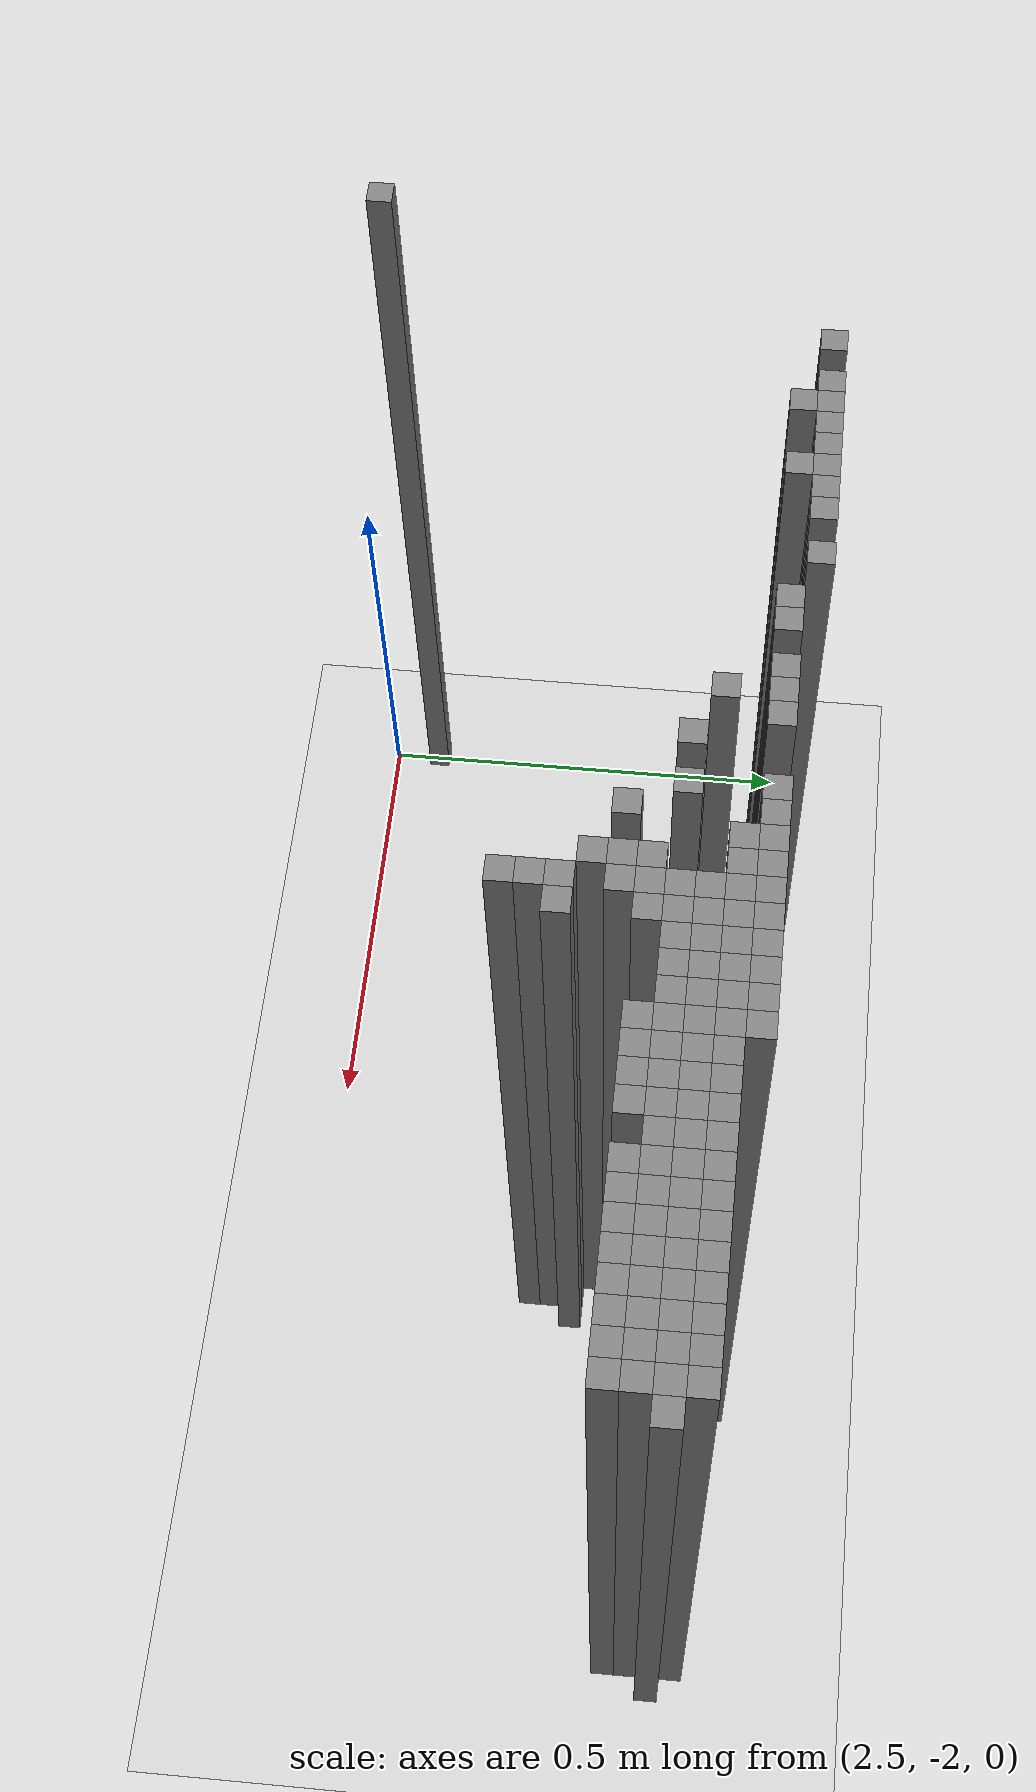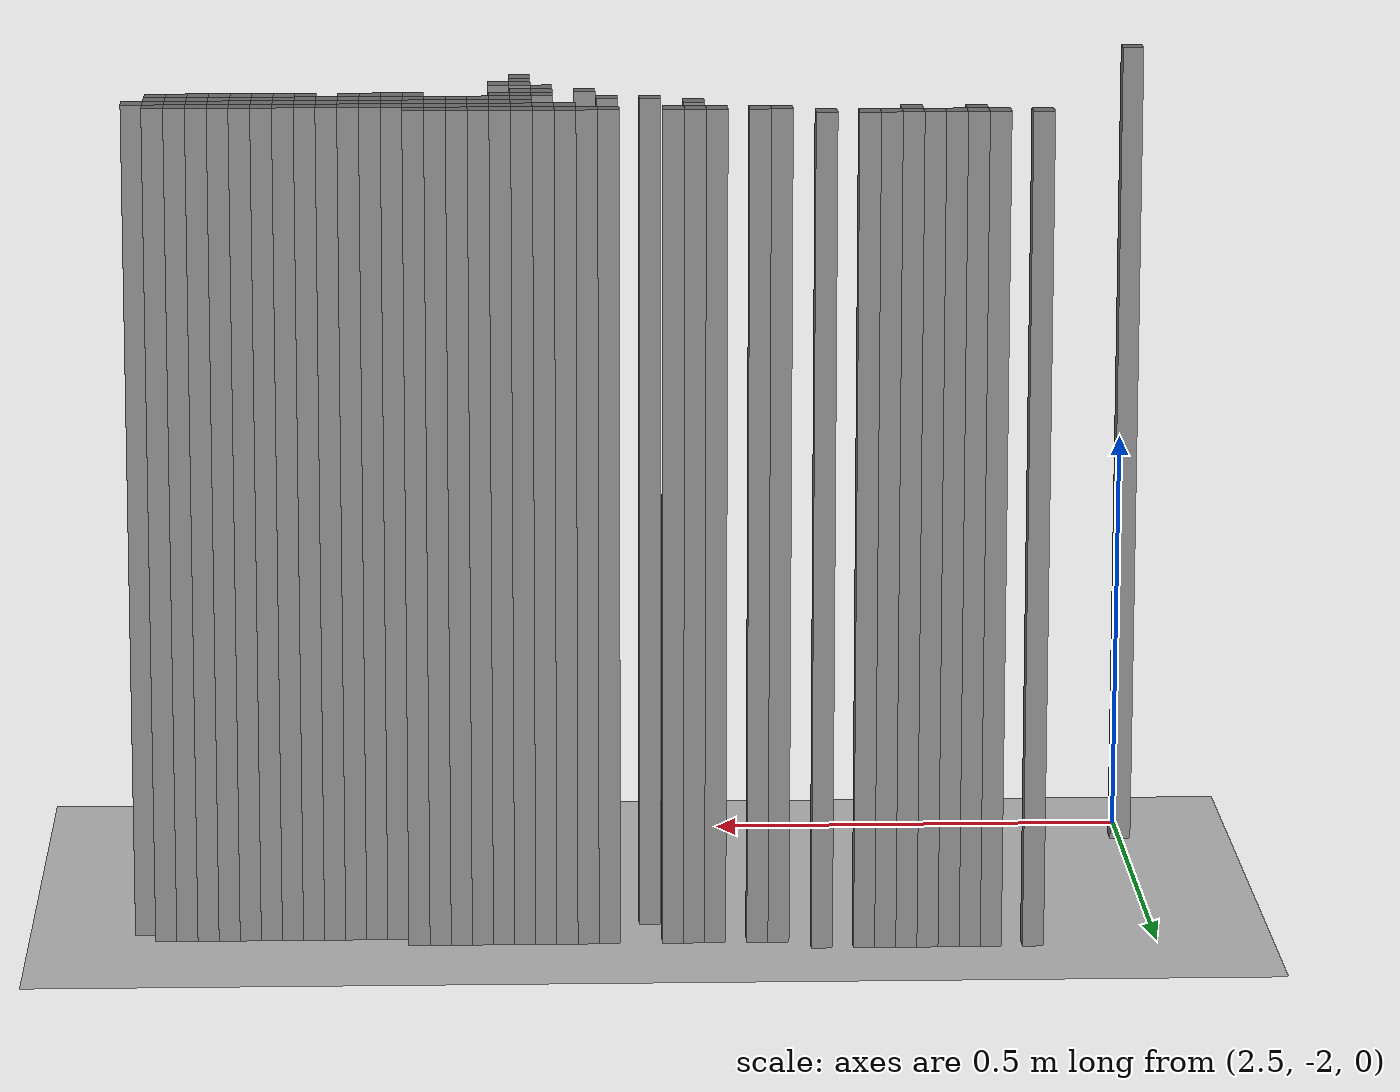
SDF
<sdf version="1.6">
 <world name="map_world">
  <include><uri>model://ground_plane</uri></include>
  <include><uri>model://sun</uri></include>
  <model name="obs_199_109">
   <static>true</static>
   <link name="link">
    <collision name="collision"><geometry><box><size>0.025 0.025 1.0</size></box></geometry></collision>
    <visual name="visual">
     <geometry><box><size>0.025 0.025 1.0</size></box></geometry>
     <material><ambient>0.5 0.5 0.5 1</ambient></material>
    </visual>
   </link>
   <pose>2.6487650000000005 -1.494071 0.5 0 0 0</pose>
  </model>
  <model name="obs_201_109">
   <static>true</static>
   <link name="link">
    <collision name="collision"><geometry><box><size>0.025 0.025 1.0</size></box></geometry></collision>
    <visual name="visual">
     <geometry><box><size>0.025 0.025 1.0</size></box></geometry>
     <material><ambient>0.5 0.5 0.5 1</ambient></material>
    </visual>
   </link>
   <pose>2.6987650000000003 -1.494071 0.5 0 0 0</pose>
  </model>
  <model name="obs_202_109">
   <static>true</static>
   <link name="link">
    <collision name="collision"><geometry><box><size>0.025 0.025 1.0</size></box></geometry></collision>
    <visual name="visual">
     <geometry><box><size>0.025 0.025 1.0</size></box></geometry>
     <material><ambient>0.5 0.5 0.5 1</ambient></material>
    </visual>
   </link>
   <pose>2.7237650000000007 -1.494071 0.5 0 0 0</pose>
  </model>
  <model name="obs_203_109">
   <static>true</static>
   <link name="link">
    <collision name="collision"><geometry><box><size>0.025 0.025 1.0</size></box></geometry></collision>
    <visual name="visual">
     <geometry><box><size>0.025 0.025 1.0</size></box></geometry>
     <material><ambient>0.5 0.5 0.5 1</ambient></material>
    </visual>
   </link>
   <pose>2.748765 -1.494071 0.5 0 0 0</pose>
  </model>
  <model name="obs_204_109">
   <static>true</static>
   <link name="link">
    <collision name="collision"><geometry><box><size>0.025 0.025 1.0</size></box></geometry></collision>
    <visual name="visual">
     <geometry><box><size>0.025 0.025 1.0</size></box></geometry>
     <material><ambient>0.5 0.5 0.5 1</ambient></material>
    </visual>
   </link>
   <pose>2.7737650000000005 -1.494071 0.5 0 0 0</pose>
  </model>
  <model name="obs_205_109">
   <static>true</static>
   <link name="link">
    <collision name="collision"><geometry><box><size>0.025 0.025 1.0</size></box></geometry></collision>
    <visual name="visual">
     <geometry><box><size>0.025 0.025 1.0</size></box></geometry>
     <material><ambient>0.5 0.5 0.5 1</ambient></material>
    </visual>
   </link>
   <pose>2.798765 -1.494071 0.5 0 0 0</pose>
  </model>
  <model name="obs_206_109">
   <static>true</static>
   <link name="link">
    <collision name="collision"><geometry><box><size>0.025 0.025 1.0</size></box></geometry></collision>
    <visual name="visual">
     <geometry><box><size>0.025 0.025 1.0</size></box></geometry>
     <material><ambient>0.5 0.5 0.5 1</ambient></material>
    </visual>
   </link>
   <pose>2.8237650000000003 -1.494071 0.5 0 0 0</pose>
  </model>
  <model name="obs_207_109">
   <static>true</static>
   <link name="link">
    <collision name="collision"><geometry><box><size>0.025 0.025 1.0</size></box></geometry></collision>
    <visual name="visual">
     <geometry><box><size>0.025 0.025 1.0</size></box></geometry>
     <material><ambient>0.5 0.5 0.5 1</ambient></material>
    </visual>
   </link>
   <pose>2.8487650000000007 -1.494071 0.5 0 0 0</pose>
  </model>
  <model name="obs_209_109">
   <static>true</static>
   <link name="link">
    <collision name="collision"><geometry><box><size>0.025 0.025 1.0</size></box></geometry></collision>
    <visual name="visual">
     <geometry><box><size>0.025 0.025 1.0</size></box></geometry>
     <material><ambient>0.5 0.5 0.5 1</ambient></material>
    </visual>
   </link>
   <pose>2.8987650000000005 -1.494071 0.5 0 0 0</pose>
  </model>
  <model name="obs_202_110">
   <static>true</static>
   <link name="link">
    <collision name="collision"><geometry><box><size>0.025 0.025 1.0</size></box></geometry></collision>
    <visual name="visual">
     <geometry><box><size>0.025 0.025 1.0</size></box></geometry>
     <material><ambient>0.5 0.5 0.5 1</ambient></material>
    </visual>
   </link>
   <pose>2.7237650000000007 -1.5190709999999998 0.5 0 0 0</pose>
  </model>
  <model name="obs_205_110">
   <static>true</static>
   <link name="link">
    <collision name="collision"><geometry><box><size>0.025 0.025 1.0</size></box></geometry></collision>
    <visual name="visual">
     <geometry><box><size>0.025 0.025 1.0</size></box></geometry>
     <material><ambient>0.5 0.5 0.5 1</ambient></material>
    </visual>
   </link>
   <pose>2.798765 -1.5190709999999998 0.5 0 0 0</pose>
  </model>
  <model name="obs_211_110">
   <static>true</static>
   <link name="link">
    <collision name="collision"><geometry><box><size>0.025 0.025 1.0</size></box></geometry></collision>
    <visual name="visual">
     <geometry><box><size>0.025 0.025 1.0</size></box></geometry>
     <material><ambient>0.5 0.5 0.5 1</ambient></material>
    </visual>
   </link>
   <pose>2.9487650000000003 -1.5190709999999998 0.5 0 0 0</pose>
  </model>
  <model name="obs_212_110">
   <static>true</static>
   <link name="link">
    <collision name="collision"><geometry><box><size>0.025 0.025 1.0</size></box></geometry></collision>
    <visual name="visual">
     <geometry><box><size>0.025 0.025 1.0</size></box></geometry>
     <material><ambient>0.5 0.5 0.5 1</ambient></material>
    </visual>
   </link>
   <pose>2.9737650000000007 -1.5190709999999998 0.5 0 0 0</pose>
  </model>
  <model name="obs_214_110">
   <static>true</static>
   <link name="link">
    <collision name="collision"><geometry><box><size>0.025 0.025 1.0</size></box></geometry></collision>
    <visual name="visual">
     <geometry><box><size>0.025 0.025 1.0</size></box></geometry>
     <material><ambient>0.5 0.5 0.5 1</ambient></material>
    </visual>
   </link>
   <pose>3.0237650000000005 -1.5190709999999998 0.5 0 0 0</pose>
  </model>
  <model name="obs_215_110">
   <static>true</static>
   <link name="link">
    <collision name="collision"><geometry><box><size>0.025 0.025 1.0</size></box></geometry></collision>
    <visual name="visual">
     <geometry><box><size>0.025 0.025 1.0</size></box></geometry>
     <material><ambient>0.5 0.5 0.5 1</ambient></material>
    </visual>
   </link>
   <pose>3.048765 -1.5190709999999998 0.5 0 0 0</pose>
  </model>
  <model name="obs_216_110">
   <static>true</static>
   <link name="link">
    <collision name="collision"><geometry><box><size>0.025 0.025 1.0</size></box></geometry></collision>
    <visual name="visual">
     <geometry><box><size>0.025 0.025 1.0</size></box></geometry>
     <material><ambient>0.5 0.5 0.5 1</ambient></material>
    </visual>
   </link>
   <pose>3.0737650000000003 -1.5190709999999998 0.5 0 0 0</pose>
  </model>
  <model name="obs_219_110">
   <static>true</static>
   <link name="link">
    <collision name="collision"><geometry><box><size>0.025 0.025 1.0</size></box></geometry></collision>
    <visual name="visual">
     <geometry><box><size>0.025 0.025 1.0</size></box></geometry>
     <material><ambient>0.5 0.5 0.5 1</ambient></material>
    </visual>
   </link>
   <pose>3.1487650000000005 -1.5190709999999998 0.5 0 0 0</pose>
  </model>
  <model name="obs_220_110">
   <static>true</static>
   <link name="link">
    <collision name="collision"><geometry><box><size>0.025 0.025 1.0</size></box></geometry></collision>
    <visual name="visual">
     <geometry><box><size>0.025 0.025 1.0</size></box></geometry>
     <material><ambient>0.5 0.5 0.5 1</ambient></material>
    </visual>
   </link>
   <pose>3.173765 -1.5190709999999998 0.5 0 0 0</pose>
  </model>
  <model name="obs_221_110">
   <static>true</static>
   <link name="link">
    <collision name="collision"><geometry><box><size>0.025 0.025 1.0</size></box></geometry></collision>
    <visual name="visual">
     <geometry><box><size>0.025 0.025 1.0</size></box></geometry>
     <material><ambient>0.5 0.5 0.5 1</ambient></material>
    </visual>
   </link>
   <pose>3.1987650000000003 -1.5190709999999998 0.5 0 0 0</pose>
  </model>
  <model name="obs_222_110">
   <static>true</static>
   <link name="link">
    <collision name="collision"><geometry><box><size>0.025 0.025 1.0</size></box></geometry></collision>
    <visual name="visual">
     <geometry><box><size>0.025 0.025 1.0</size></box></geometry>
     <material><ambient>0.5 0.5 0.5 1</ambient></material>
    </visual>
   </link>
   <pose>3.2237650000000007 -1.5190709999999998 0.5 0 0 0</pose>
  </model>
  <model name="obs_223_110">
   <static>true</static>
   <link name="link">
    <collision name="collision"><geometry><box><size>0.025 0.025 1.0</size></box></geometry></collision>
    <visual name="visual">
     <geometry><box><size>0.025 0.025 1.0</size></box></geometry>
     <material><ambient>0.5 0.5 0.5 1</ambient></material>
    </visual>
   </link>
   <pose>3.248765 -1.5190709999999998 0.5 0 0 0</pose>
  </model>
  <model name="obs_224_110">
   <static>true</static>
   <link name="link">
    <collision name="collision"><geometry><box><size>0.025 0.025 1.0</size></box></geometry></collision>
    <visual name="visual">
     <geometry><box><size>0.025 0.025 1.0</size></box></geometry>
     <material><ambient>0.5 0.5 0.5 1</ambient></material>
    </visual>
   </link>
   <pose>3.2737650000000005 -1.5190709999999998 0.5 0 0 0</pose>
  </model>
  <model name="obs_225_110">
   <static>true</static>
   <link name="link">
    <collision name="collision"><geometry><box><size>0.025 0.025 1.0</size></box></geometry></collision>
    <visual name="visual">
     <geometry><box><size>0.025 0.025 1.0</size></box></geometry>
     <material><ambient>0.5 0.5 0.5 1</ambient></material>
    </visual>
   </link>
   <pose>3.298765 -1.5190709999999998 0.5 0 0 0</pose>
  </model>
  <model name="obs_226_110">
   <static>true</static>
   <link name="link">
    <collision name="collision"><geometry><box><size>0.025 0.025 1.0</size></box></geometry></collision>
    <visual name="visual">
     <geometry><box><size>0.025 0.025 1.0</size></box></geometry>
     <material><ambient>0.5 0.5 0.5 1</ambient></material>
    </visual>
   </link>
   <pose>3.3237650000000003 -1.5190709999999998 0.5 0 0 0</pose>
  </model>
  <model name="obs_227_110">
   <static>true</static>
   <link name="link">
    <collision name="collision"><geometry><box><size>0.025 0.025 1.0</size></box></geometry></collision>
    <visual name="visual">
     <geometry><box><size>0.025 0.025 1.0</size></box></geometry>
     <material><ambient>0.5 0.5 0.5 1</ambient></material>
    </visual>
   </link>
   <pose>3.3487650000000007 -1.5190709999999998 0.5 0 0 0</pose>
  </model>
  <model name="obs_228_110">
   <static>true</static>
   <link name="link">
    <collision name="collision"><geometry><box><size>0.025 0.025 1.0</size></box></geometry></collision>
    <visual name="visual">
     <geometry><box><size>0.025 0.025 1.0</size></box></geometry>
     <material><ambient>0.5 0.5 0.5 1</ambient></material>
    </visual>
   </link>
   <pose>3.373765 -1.5190709999999998 0.5 0 0 0</pose>
  </model>
  <model name="obs_221_111">
   <static>true</static>
   <link name="link">
    <collision name="collision"><geometry><box><size>0.025 0.025 1.0</size></box></geometry></collision>
    <visual name="visual">
     <geometry><box><size>0.025 0.025 1.0</size></box></geometry>
     <material><ambient>0.5 0.5 0.5 1</ambient></material>
    </visual>
   </link>
   <pose>3.1987650000000003 -1.544071 0.5 0 0 0</pose>
  </model>
  <model name="obs_222_111">
   <static>true</static>
   <link name="link">
    <collision name="collision"><geometry><box><size>0.025 0.025 1.0</size></box></geometry></collision>
    <visual name="visual">
     <geometry><box><size>0.025 0.025 1.0</size></box></geometry>
     <material><ambient>0.5 0.5 0.5 1</ambient></material>
    </visual>
   </link>
   <pose>3.2237650000000007 -1.544071 0.5 0 0 0</pose>
  </model>
  <model name="obs_223_111">
   <static>true</static>
   <link name="link">
    <collision name="collision"><geometry><box><size>0.025 0.025 1.0</size></box></geometry></collision>
    <visual name="visual">
     <geometry><box><size>0.025 0.025 1.0</size></box></geometry>
     <material><ambient>0.5 0.5 0.5 1</ambient></material>
    </visual>
   </link>
   <pose>3.248765 -1.544071 0.5 0 0 0</pose>
  </model>
  <model name="obs_224_111">
   <static>true</static>
   <link name="link">
    <collision name="collision"><geometry><box><size>0.025 0.025 1.0</size></box></geometry></collision>
    <visual name="visual">
     <geometry><box><size>0.025 0.025 1.0</size></box></geometry>
     <material><ambient>0.5 0.5 0.5 1</ambient></material>
    </visual>
   </link>
   <pose>3.2737650000000005 -1.544071 0.5 0 0 0</pose>
  </model>
  <model name="obs_225_111">
   <static>true</static>
   <link name="link">
    <collision name="collision"><geometry><box><size>0.025 0.025 1.0</size></box></geometry></collision>
    <visual name="visual">
     <geometry><box><size>0.025 0.025 1.0</size></box></geometry>
     <material><ambient>0.5 0.5 0.5 1</ambient></material>
    </visual>
   </link>
   <pose>3.298765 -1.544071 0.5 0 0 0</pose>
  </model>
  <model name="obs_226_111">
   <static>true</static>
   <link name="link">
    <collision name="collision"><geometry><box><size>0.025 0.025 1.0</size></box></geometry></collision>
    <visual name="visual">
     <geometry><box><size>0.025 0.025 1.0</size></box></geometry>
     <material><ambient>0.5 0.5 0.5 1</ambient></material>
    </visual>
   </link>
   <pose>3.3237650000000003 -1.544071 0.5 0 0 0</pose>
  </model>
  <model name="obs_227_111">
   <static>true</static>
   <link name="link">
    <collision name="collision"><geometry><box><size>0.025 0.025 1.0</size></box></geometry></collision>
    <visual name="visual">
     <geometry><box><size>0.025 0.025 1.0</size></box></geometry>
     <material><ambient>0.5 0.5 0.5 1</ambient></material>
    </visual>
   </link>
   <pose>3.3487650000000007 -1.544071 0.5 0 0 0</pose>
  </model>
  <model name="obs_228_111">
   <static>true</static>
   <link name="link">
    <collision name="collision"><geometry><box><size>0.025 0.025 1.0</size></box></geometry></collision>
    <visual name="visual">
     <geometry><box><size>0.025 0.025 1.0</size></box></geometry>
     <material><ambient>0.5 0.5 0.5 1</ambient></material>
    </visual>
   </link>
   <pose>3.373765 -1.544071 0.5 0 0 0</pose>
  </model>
  <model name="obs_229_111">
   <static>true</static>
   <link name="link">
    <collision name="collision"><geometry><box><size>0.025 0.025 1.0</size></box></geometry></collision>
    <visual name="visual">
     <geometry><box><size>0.025 0.025 1.0</size></box></geometry>
     <material><ambient>0.5 0.5 0.5 1</ambient></material>
    </visual>
   </link>
   <pose>3.3987650000000005 -1.544071 0.5 0 0 0</pose>
  </model>
  <model name="obs_230_111">
   <static>true</static>
   <link name="link">
    <collision name="collision"><geometry><box><size>0.025 0.025 1.0</size></box></geometry></collision>
    <visual name="visual">
     <geometry><box><size>0.025 0.025 1.0</size></box></geometry>
     <material><ambient>0.5 0.5 0.5 1</ambient></material>
    </visual>
   </link>
   <pose>3.423765 -1.544071 0.5 0 0 0</pose>
  </model>
  <model name="obs_231_111">
   <static>true</static>
   <link name="link">
    <collision name="collision"><geometry><box><size>0.025 0.025 1.0</size></box></geometry></collision>
    <visual name="visual">
     <geometry><box><size>0.025 0.025 1.0</size></box></geometry>
     <material><ambient>0.5 0.5 0.5 1</ambient></material>
    </visual>
   </link>
   <pose>3.4487650000000003 -1.544071 0.5 0 0 0</pose>
  </model>
  <model name="obs_232_111">
   <static>true</static>
   <link name="link">
    <collision name="collision"><geometry><box><size>0.025 0.025 1.0</size></box></geometry></collision>
    <visual name="visual">
     <geometry><box><size>0.025 0.025 1.0</size></box></geometry>
     <material><ambient>0.5 0.5 0.5 1</ambient></material>
    </visual>
   </link>
   <pose>3.4737650000000007 -1.544071 0.5 0 0 0</pose>
  </model>
  <model name="obs_233_111">
   <static>true</static>
   <link name="link">
    <collision name="collision"><geometry><box><size>0.025 0.025 1.0</size></box></geometry></collision>
    <visual name="visual">
     <geometry><box><size>0.025 0.025 1.0</size></box></geometry>
     <material><ambient>0.5 0.5 0.5 1</ambient></material>
    </visual>
   </link>
   <pose>3.498765 -1.544071 0.5 0 0 0</pose>
  </model>
  <model name="obs_234_111">
   <static>true</static>
   <link name="link">
    <collision name="collision"><geometry><box><size>0.025 0.025 1.0</size></box></geometry></collision>
    <visual name="visual">
     <geometry><box><size>0.025 0.025 1.0</size></box></geometry>
     <material><ambient>0.5 0.5 0.5 1</ambient></material>
    </visual>
   </link>
   <pose>3.5237650000000005 -1.544071 0.5 0 0 0</pose>
  </model>
  <model name="obs_235_111">
   <static>true</static>
   <link name="link">
    <collision name="collision"><geometry><box><size>0.025 0.025 1.0</size></box></geometry></collision>
    <visual name="visual">
     <geometry><box><size>0.025 0.025 1.0</size></box></geometry>
     <material><ambient>0.5 0.5 0.5 1</ambient></material>
    </visual>
   </link>
   <pose>3.548765 -1.544071 0.5 0 0 0</pose>
  </model>
  <model name="obs_236_111">
   <static>true</static>
   <link name="link">
    <collision name="collision"><geometry><box><size>0.025 0.025 1.0</size></box></geometry></collision>
    <visual name="visual">
     <geometry><box><size>0.025 0.025 1.0</size></box></geometry>
     <material><ambient>0.5 0.5 0.5 1</ambient></material>
    </visual>
   </link>
   <pose>3.5737650000000003 -1.544071 0.5 0 0 0</pose>
  </model>
  <model name="obs_237_111">
   <static>true</static>
   <link name="link">
    <collision name="collision"><geometry><box><size>0.025 0.025 1.0</size></box></geometry></collision>
    <visual name="visual">
     <geometry><box><size>0.025 0.025 1.0</size></box></geometry>
     <material><ambient>0.5 0.5 0.5 1</ambient></material>
    </visual>
   </link>
   <pose>3.5987650000000007 -1.544071 0.5 0 0 0</pose>
  </model>
  <model name="obs_238_111">
   <static>true</static>
   <link name="link">
    <collision name="collision"><geometry><box><size>0.025 0.025 1.0</size></box></geometry></collision>
    <visual name="visual">
     <geometry><box><size>0.025 0.025 1.0</size></box></geometry>
     <material><ambient>0.5 0.5 0.5 1</ambient></material>
    </visual>
   </link>
   <pose>3.623765 -1.544071 0.5 0 0 0</pose>
  </model>
  <model name="obs_239_111">
   <static>true</static>
   <link name="link">
    <collision name="collision"><geometry><box><size>0.025 0.025 1.0</size></box></geometry></collision>
    <visual name="visual">
     <geometry><box><size>0.025 0.025 1.0</size></box></geometry>
     <material><ambient>0.5 0.5 0.5 1</ambient></material>
    </visual>
   </link>
   <pose>3.6487650000000005 -1.544071 0.5 0 0 0</pose>
  </model>
  <model name="obs_240_111">
   <static>true</static>
   <link name="link">
    <collision name="collision"><geometry><box><size>0.025 0.025 1.0</size></box></geometry></collision>
    <visual name="visual">
     <geometry><box><size>0.025 0.025 1.0</size></box></geometry>
     <material><ambient>0.5 0.5 0.5 1</ambient></material>
    </visual>
   </link>
   <pose>3.673765 -1.544071 0.5 0 0 0</pose>
  </model>
  <model name="obs_215_112">
   <static>true</static>
   <link name="link">
    <collision name="collision"><geometry><box><size>0.025 0.025 1.0</size></box></geometry></collision>
    <visual name="visual">
     <geometry><box><size>0.025 0.025 1.0</size></box></geometry>
     <material><ambient>0.5 0.5 0.5 1</ambient></material>
    </visual>
   </link>
   <pose>3.048765 -1.5690709999999999 0.5 0 0 0</pose>
  </model>
  <model name="obs_223_112">
   <static>true</static>
   <link name="link">
    <collision name="collision"><geometry><box><size>0.025 0.025 1.0</size></box></geometry></collision>
    <visual name="visual">
     <geometry><box><size>0.025 0.025 1.0</size></box></geometry>
     <material><ambient>0.5 0.5 0.5 1</ambient></material>
    </visual>
   </link>
   <pose>3.248765 -1.5690709999999999 0.5 0 0 0</pose>
  </model>
  <model name="obs_224_112">
   <static>true</static>
   <link name="link">
    <collision name="collision"><geometry><box><size>0.025 0.025 1.0</size></box></geometry></collision>
    <visual name="visual">
     <geometry><box><size>0.025 0.025 1.0</size></box></geometry>
     <material><ambient>0.5 0.5 0.5 1</ambient></material>
    </visual>
   </link>
   <pose>3.2737650000000005 -1.5690709999999999 0.5 0 0 0</pose>
  </model>
  <model name="obs_225_112">
   <static>true</static>
   <link name="link">
    <collision name="collision"><geometry><box><size>0.025 0.025 1.0</size></box></geometry></collision>
    <visual name="visual">
     <geometry><box><size>0.025 0.025 1.0</size></box></geometry>
     <material><ambient>0.5 0.5 0.5 1</ambient></material>
    </visual>
   </link>
   <pose>3.298765 -1.5690709999999999 0.5 0 0 0</pose>
  </model>
  <model name="obs_226_112">
   <static>true</static>
   <link name="link">
    <collision name="collision"><geometry><box><size>0.025 0.025 1.0</size></box></geometry></collision>
    <visual name="visual">
     <geometry><box><size>0.025 0.025 1.0</size></box></geometry>
     <material><ambient>0.5 0.5 0.5 1</ambient></material>
    </visual>
   </link>
   <pose>3.3237650000000003 -1.5690709999999999 0.5 0 0 0</pose>
  </model>
  <model name="obs_227_112">
   <static>true</static>
   <link name="link">
    <collision name="collision"><geometry><box><size>0.025 0.025 1.0</size></box></geometry></collision>
    <visual name="visual">
     <geometry><box><size>0.025 0.025 1.0</size></box></geometry>
     <material><ambient>0.5 0.5 0.5 1</ambient></material>
    </visual>
   </link>
   <pose>3.3487650000000007 -1.5690709999999999 0.5 0 0 0</pose>
  </model>
  <model name="obs_228_112">
   <static>true</static>
   <link name="link">
    <collision name="collision"><geometry><box><size>0.025 0.025 1.0</size></box></geometry></collision>
    <visual name="visual">
     <geometry><box><size>0.025 0.025 1.0</size></box></geometry>
     <material><ambient>0.5 0.5 0.5 1</ambient></material>
    </visual>
   </link>
   <pose>3.373765 -1.5690709999999999 0.5 0 0 0</pose>
  </model>
  <model name="obs_229_112">
   <static>true</static>
   <link name="link">
    <collision name="collision"><geometry><box><size>0.025 0.025 1.0</size></box></geometry></collision>
    <visual name="visual">
     <geometry><box><size>0.025 0.025 1.0</size></box></geometry>
     <material><ambient>0.5 0.5 0.5 1</ambient></material>
    </visual>
   </link>
   <pose>3.3987650000000005 -1.5690709999999999 0.5 0 0 0</pose>
  </model>
  <model name="obs_230_112">
   <static>true</static>
   <link name="link">
    <collision name="collision"><geometry><box><size>0.025 0.025 1.0</size></box></geometry></collision>
    <visual name="visual">
     <geometry><box><size>0.025 0.025 1.0</size></box></geometry>
     <material><ambient>0.5 0.5 0.5 1</ambient></material>
    </visual>
   </link>
   <pose>3.423765 -1.5690709999999999 0.5 0 0 0</pose>
  </model>
  <model name="obs_231_112">
   <static>true</static>
   <link name="link">
    <collision name="collision"><geometry><box><size>0.025 0.025 1.0</size></box></geometry></collision>
    <visual name="visual">
     <geometry><box><size>0.025 0.025 1.0</size></box></geometry>
     <material><ambient>0.5 0.5 0.5 1</ambient></material>
    </visual>
   </link>
   <pose>3.4487650000000003 -1.5690709999999999 0.5 0 0 0</pose>
  </model>
  <model name="obs_232_112">
   <static>true</static>
   <link name="link">
    <collision name="collision"><geometry><box><size>0.025 0.025 1.0</size></box></geometry></collision>
    <visual name="visual">
     <geometry><box><size>0.025 0.025 1.0</size></box></geometry>
     <material><ambient>0.5 0.5 0.5 1</ambient></material>
    </visual>
   </link>
   <pose>3.4737650000000007 -1.5690709999999999 0.5 0 0 0</pose>
  </model>
  <model name="obs_233_112">
   <static>true</static>
   <link name="link">
    <collision name="collision"><geometry><box><size>0.025 0.025 1.0</size></box></geometry></collision>
    <visual name="visual">
     <geometry><box><size>0.025 0.025 1.0</size></box></geometry>
     <material><ambient>0.5 0.5 0.5 1</ambient></material>
    </visual>
   </link>
   <pose>3.498765 -1.5690709999999999 0.5 0 0 0</pose>
  </model>
  <model name="obs_234_112">
   <static>true</static>
   <link name="link">
    <collision name="collision"><geometry><box><size>0.025 0.025 1.0</size></box></geometry></collision>
    <visual name="visual">
     <geometry><box><size>0.025 0.025 1.0</size></box></geometry>
     <material><ambient>0.5 0.5 0.5 1</ambient></material>
    </visual>
   </link>
   <pose>3.5237650000000005 -1.5690709999999999 0.5 0 0 0</pose>
  </model>
  <model name="obs_235_112">
   <static>true</static>
   <link name="link">
    <collision name="collision"><geometry><box><size>0.025 0.025 1.0</size></box></geometry></collision>
    <visual name="visual">
     <geometry><box><size>0.025 0.025 1.0</size></box></geometry>
     <material><ambient>0.5 0.5 0.5 1</ambient></material>
    </visual>
   </link>
   <pose>3.548765 -1.5690709999999999 0.5 0 0 0</pose>
  </model>
  <model name="obs_236_112">
   <static>true</static>
   <link name="link">
    <collision name="collision"><geometry><box><size>0.025 0.025 1.0</size></box></geometry></collision>
    <visual name="visual">
     <geometry><box><size>0.025 0.025 1.0</size></box></geometry>
     <material><ambient>0.5 0.5 0.5 1</ambient></material>
    </visual>
   </link>
   <pose>3.5737650000000003 -1.5690709999999999 0.5 0 0 0</pose>
  </model>
  <model name="obs_237_112">
   <static>true</static>
   <link name="link">
    <collision name="collision"><geometry><box><size>0.025 0.025 1.0</size></box></geometry></collision>
    <visual name="visual">
     <geometry><box><size>0.025 0.025 1.0</size></box></geometry>
     <material><ambient>0.5 0.5 0.5 1</ambient></material>
    </visual>
   </link>
   <pose>3.5987650000000007 -1.5690709999999999 0.5 0 0 0</pose>
  </model>
  <model name="obs_238_112">
   <static>true</static>
   <link name="link">
    <collision name="collision"><geometry><box><size>0.025 0.025 1.0</size></box></geometry></collision>
    <visual name="visual">
     <geometry><box><size>0.025 0.025 1.0</size></box></geometry>
     <material><ambient>0.5 0.5 0.5 1</ambient></material>
    </visual>
   </link>
   <pose>3.623765 -1.5690709999999999 0.5 0 0 0</pose>
  </model>
  <model name="obs_239_112">
   <static>true</static>
   <link name="link">
    <collision name="collision"><geometry><box><size>0.025 0.025 1.0</size></box></geometry></collision>
    <visual name="visual">
     <geometry><box><size>0.025 0.025 1.0</size></box></geometry>
     <material><ambient>0.5 0.5 0.5 1</ambient></material>
    </visual>
   </link>
   <pose>3.6487650000000005 -1.5690709999999999 0.5 0 0 0</pose>
  </model>
  <model name="obs_240_112">
   <static>true</static>
   <link name="link">
    <collision name="collision"><geometry><box><size>0.025 0.025 1.0</size></box></geometry></collision>
    <visual name="visual">
     <geometry><box><size>0.025 0.025 1.0</size></box></geometry>
     <material><ambient>0.5 0.5 0.5 1</ambient></material>
    </visual>
   </link>
   <pose>3.673765 -1.5690709999999999 0.5 0 0 0</pose>
  </model>
  <model name="obs_241_112">
   <static>true</static>
   <link name="link">
    <collision name="collision"><geometry><box><size>0.025 0.025 1.0</size></box></geometry></collision>
    <visual name="visual">
     <geometry><box><size>0.025 0.025 1.0</size></box></geometry>
     <material><ambient>0.5 0.5 0.5 1</ambient></material>
    </visual>
   </link>
   <pose>3.6987650000000003 -1.5690709999999999 0.5 0 0 0</pose>
  </model>
  <model name="obs_217_113">
   <static>true</static>
   <link name="link">
    <collision name="collision"><geometry><box><size>0.025 0.025 1.0</size></box></geometry></collision>
    <visual name="visual">
     <geometry><box><size>0.025 0.025 1.0</size></box></geometry>
     <material><ambient>0.5 0.5 0.5 1</ambient></material>
    </visual>
   </link>
   <pose>3.0987650000000007 -1.594071 0.5 0 0 0</pose>
  </model>
  <model name="obs_219_113">
   <static>true</static>
   <link name="link">
    <collision name="collision"><geometry><box><size>0.025 0.025 1.0</size></box></geometry></collision>
    <visual name="visual">
     <geometry><box><size>0.025 0.025 1.0</size></box></geometry>
     <material><ambient>0.5 0.5 0.5 1</ambient></material>
    </visual>
   </link>
   <pose>3.1487650000000005 -1.594071 0.5 0 0 0</pose>
  </model>
  <model name="obs_223_113">
   <static>true</static>
   <link name="link">
    <collision name="collision"><geometry><box><size>0.025 0.025 1.0</size></box></geometry></collision>
    <visual name="visual">
     <geometry><box><size>0.025 0.025 1.0</size></box></geometry>
     <material><ambient>0.5 0.5 0.5 1</ambient></material>
    </visual>
   </link>
   <pose>3.248765 -1.594071 0.5 0 0 0</pose>
  </model>
  <model name="obs_224_113">
   <static>true</static>
   <link name="link">
    <collision name="collision"><geometry><box><size>0.025 0.025 1.0</size></box></geometry></collision>
    <visual name="visual">
     <geometry><box><size>0.025 0.025 1.0</size></box></geometry>
     <material><ambient>0.5 0.5 0.5 1</ambient></material>
    </visual>
   </link>
   <pose>3.2737650000000005 -1.594071 0.5 0 0 0</pose>
  </model>
  <model name="obs_225_113">
   <static>true</static>
   <link name="link">
    <collision name="collision"><geometry><box><size>0.025 0.025 1.0</size></box></geometry></collision>
    <visual name="visual">
     <geometry><box><size>0.025 0.025 1.0</size></box></geometry>
     <material><ambient>0.5 0.5 0.5 1</ambient></material>
    </visual>
   </link>
   <pose>3.298765 -1.594071 0.5 0 0 0</pose>
  </model>
  <model name="obs_226_113">
   <static>true</static>
   <link name="link">
    <collision name="collision"><geometry><box><size>0.025 0.025 1.0</size></box></geometry></collision>
    <visual name="visual">
     <geometry><box><size>0.025 0.025 1.0</size></box></geometry>
     <material><ambient>0.5 0.5 0.5 1</ambient></material>
    </visual>
   </link>
   <pose>3.3237650000000003 -1.594071 0.5 0 0 0</pose>
  </model>
  <model name="obs_227_113">
   <static>true</static>
   <link name="link">
    <collision name="collision"><geometry><box><size>0.025 0.025 1.0</size></box></geometry></collision>
    <visual name="visual">
     <geometry><box><size>0.025 0.025 1.0</size></box></geometry>
     <material><ambient>0.5 0.5 0.5 1</ambient></material>
    </visual>
   </link>
   <pose>3.3487650000000007 -1.594071 0.5 0 0 0</pose>
  </model>
  <model name="obs_228_113">
   <static>true</static>
   <link name="link">
    <collision name="collision"><geometry><box><size>0.025 0.025 1.0</size></box></geometry></collision>
    <visual name="visual">
     <geometry><box><size>0.025 0.025 1.0</size></box></geometry>
     <material><ambient>0.5 0.5 0.5 1</ambient></material>
    </visual>
   </link>
   <pose>3.373765 -1.594071 0.5 0 0 0</pose>
  </model>
  <model name="obs_229_113">
   <static>true</static>
   <link name="link">
    <collision name="collision"><geometry><box><size>0.025 0.025 1.0</size></box></geometry></collision>
    <visual name="visual">
     <geometry><box><size>0.025 0.025 1.0</size></box></geometry>
     <material><ambient>0.5 0.5 0.5 1</ambient></material>
    </visual>
   </link>
   <pose>3.3987650000000005 -1.594071 0.5 0 0 0</pose>
  </model>
  <model name="obs_230_113">
   <static>true</static>
   <link name="link">
    <collision name="collision"><geometry><box><size>0.025 0.025 1.0</size></box></geometry></collision>
    <visual name="visual">
     <geometry><box><size>0.025 0.025 1.0</size></box></geometry>
     <material><ambient>0.5 0.5 0.5 1</ambient></material>
    </visual>
   </link>
   <pose>3.423765 -1.594071 0.5 0 0 0</pose>
  </model>
  <model name="obs_231_113">
   <static>true</static>
   <link name="link">
    <collision name="collision"><geometry><box><size>0.025 0.025 1.0</size></box></geometry></collision>
    <visual name="visual">
     <geometry><box><size>0.025 0.025 1.0</size></box></geometry>
     <material><ambient>0.5 0.5 0.5 1</ambient></material>
    </visual>
   </link>
   <pose>3.4487650000000003 -1.594071 0.5 0 0 0</pose>
  </model>
  <model name="obs_232_113">
   <static>true</static>
   <link name="link">
    <collision name="collision"><geometry><box><size>0.025 0.025 1.0</size></box></geometry></collision>
    <visual name="visual">
     <geometry><box><size>0.025 0.025 1.0</size></box></geometry>
     <material><ambient>0.5 0.5 0.5 1</ambient></material>
    </visual>
   </link>
   <pose>3.4737650000000007 -1.594071 0.5 0 0 0</pose>
  </model>
  <model name="obs_233_113">
   <static>true</static>
   <link name="link">
    <collision name="collision"><geometry><box><size>0.025 0.025 1.0</size></box></geometry></collision>
    <visual name="visual">
     <geometry><box><size>0.025 0.025 1.0</size></box></geometry>
     <material><ambient>0.5 0.5 0.5 1</ambient></material>
    </visual>
   </link>
   <pose>3.498765 -1.594071 0.5 0 0 0</pose>
  </model>
  <model name="obs_234_113">
   <static>true</static>
   <link name="link">
    <collision name="collision"><geometry><box><size>0.025 0.025 1.0</size></box></geometry></collision>
    <visual name="visual">
     <geometry><box><size>0.025 0.025 1.0</size></box></geometry>
     <material><ambient>0.5 0.5 0.5 1</ambient></material>
    </visual>
   </link>
   <pose>3.5237650000000005 -1.594071 0.5 0 0 0</pose>
  </model>
  <model name="obs_235_113">
   <static>true</static>
   <link name="link">
    <collision name="collision"><geometry><box><size>0.025 0.025 1.0</size></box></geometry></collision>
    <visual name="visual">
     <geometry><box><size>0.025 0.025 1.0</size></box></geometry>
     <material><ambient>0.5 0.5 0.5 1</ambient></material>
    </visual>
   </link>
   <pose>3.548765 -1.594071 0.5 0 0 0</pose>
  </model>
  <model name="obs_236_113">
   <static>true</static>
   <link name="link">
    <collision name="collision"><geometry><box><size>0.025 0.025 1.0</size></box></geometry></collision>
    <visual name="visual">
     <geometry><box><size>0.025 0.025 1.0</size></box></geometry>
     <material><ambient>0.5 0.5 0.5 1</ambient></material>
    </visual>
   </link>
   <pose>3.5737650000000003 -1.594071 0.5 0 0 0</pose>
  </model>
  <model name="obs_237_113">
   <static>true</static>
   <link name="link">
    <collision name="collision"><geometry><box><size>0.025 0.025 1.0</size></box></geometry></collision>
    <visual name="visual">
     <geometry><box><size>0.025 0.025 1.0</size></box></geometry>
     <material><ambient>0.5 0.5 0.5 1</ambient></material>
    </visual>
   </link>
   <pose>3.5987650000000007 -1.594071 0.5 0 0 0</pose>
  </model>
  <model name="obs_238_113">
   <static>true</static>
   <link name="link">
    <collision name="collision"><geometry><box><size>0.025 0.025 1.0</size></box></geometry></collision>
    <visual name="visual">
     <geometry><box><size>0.025 0.025 1.0</size></box></geometry>
     <material><ambient>0.5 0.5 0.5 1</ambient></material>
    </visual>
   </link>
   <pose>3.623765 -1.594071 0.5 0 0 0</pose>
  </model>
  <model name="obs_239_113">
   <static>true</static>
   <link name="link">
    <collision name="collision"><geometry><box><size>0.025 0.025 1.0</size></box></geometry></collision>
    <visual name="visual">
     <geometry><box><size>0.025 0.025 1.0</size></box></geometry>
     <material><ambient>0.5 0.5 0.5 1</ambient></material>
    </visual>
   </link>
   <pose>3.6487650000000005 -1.594071 0.5 0 0 0</pose>
  </model>
  <model name="obs_240_113">
   <static>true</static>
   <link name="link">
    <collision name="collision"><geometry><box><size>0.025 0.025 1.0</size></box></geometry></collision>
    <visual name="visual">
     <geometry><box><size>0.025 0.025 1.0</size></box></geometry>
     <material><ambient>0.5 0.5 0.5 1</ambient></material>
    </visual>
   </link>
   <pose>3.673765 -1.594071 0.5 0 0 0</pose>
  </model>
  <model name="obs_222_114">
   <static>true</static>
   <link name="link">
    <collision name="collision"><geometry><box><size>0.025 0.025 1.0</size></box></geometry></collision>
    <visual name="visual">
     <geometry><box><size>0.025 0.025 1.0</size></box></geometry>
     <material><ambient>0.5 0.5 0.5 1</ambient></material>
    </visual>
   </link>
   <pose>3.2237650000000007 -1.619071 0.5 0 0 0</pose>
  </model>
  <model name="obs_223_114">
   <static>true</static>
   <link name="link">
    <collision name="collision"><geometry><box><size>0.025 0.025 1.0</size></box></geometry></collision>
    <visual name="visual">
     <geometry><box><size>0.025 0.025 1.0</size></box></geometry>
     <material><ambient>0.5 0.5 0.5 1</ambient></material>
    </visual>
   </link>
   <pose>3.248765 -1.619071 0.5 0 0 0</pose>
  </model>
  <model name="obs_224_114">
   <static>true</static>
   <link name="link">
    <collision name="collision"><geometry><box><size>0.025 0.025 1.0</size></box></geometry></collision>
    <visual name="visual">
     <geometry><box><size>0.025 0.025 1.0</size></box></geometry>
     <material><ambient>0.5 0.5 0.5 1</ambient></material>
    </visual>
   </link>
   <pose>3.2737650000000005 -1.619071 0.5 0 0 0</pose>
  </model>
  <model name="obs_228_114">
   <static>true</static>
   <link name="link">
    <collision name="collision"><geometry><box><size>0.025 0.025 1.0</size></box></geometry></collision>
    <visual name="visual">
     <geometry><box><size>0.025 0.025 1.0</size></box></geometry>
     <material><ambient>0.5 0.5 0.5 1</ambient></material>
    </visual>
   </link>
   <pose>3.373765 -1.619071 0.5 0 0 0</pose>
  </model>
  <model name="obs_229_114">
   <static>true</static>
   <link name="link">
    <collision name="collision"><geometry><box><size>0.025 0.025 1.0</size></box></geometry></collision>
    <visual name="visual">
     <geometry><box><size>0.025 0.025 1.0</size></box></geometry>
     <material><ambient>0.5 0.5 0.5 1</ambient></material>
    </visual>
   </link>
   <pose>3.3987650000000005 -1.619071 0.5 0 0 0</pose>
  </model>
  <model name="obs_230_114">
   <static>true</static>
   <link name="link">
    <collision name="collision"><geometry><box><size>0.025 0.025 1.0</size></box></geometry></collision>
    <visual name="visual">
     <geometry><box><size>0.025 0.025 1.0</size></box></geometry>
     <material><ambient>0.5 0.5 0.5 1</ambient></material>
    </visual>
   </link>
   <pose>3.423765 -1.619071 0.5 0 0 0</pose>
  </model>
  <model name="obs_231_114">
   <static>true</static>
   <link name="link">
    <collision name="collision"><geometry><box><size>0.025 0.025 1.0</size></box></geometry></collision>
    <visual name="visual">
     <geometry><box><size>0.025 0.025 1.0</size></box></geometry>
     <material><ambient>0.5 0.5 0.5 1</ambient></material>
    </visual>
   </link>
   <pose>3.4487650000000003 -1.619071 0.5 0 0 0</pose>
  </model>
  <model name="obs_233_114">
   <static>true</static>
   <link name="link">
    <collision name="collision"><geometry><box><size>0.025 0.025 1.0</size></box></geometry></collision>
    <visual name="visual">
     <geometry><box><size>0.025 0.025 1.0</size></box></geometry>
     <material><ambient>0.5 0.5 0.5 1</ambient></material>
    </visual>
   </link>
   <pose>3.498765 -1.619071 0.5 0 0 0</pose>
  </model>
  <model name="obs_234_114">
   <static>true</static>
   <link name="link">
    <collision name="collision"><geometry><box><size>0.025 0.025 1.0</size></box></geometry></collision>
    <visual name="visual">
     <geometry><box><size>0.025 0.025 1.0</size></box></geometry>
     <material><ambient>0.5 0.5 0.5 1</ambient></material>
    </visual>
   </link>
   <pose>3.5237650000000005 -1.619071 0.5 0 0 0</pose>
  </model>
  <model name="obs_235_114">
   <static>true</static>
   <link name="link">
    <collision name="collision"><geometry><box><size>0.025 0.025 1.0</size></box></geometry></collision>
    <visual name="visual">
     <geometry><box><size>0.025 0.025 1.0</size></box></geometry>
     <material><ambient>0.5 0.5 0.5 1</ambient></material>
    </visual>
   </link>
   <pose>3.548765 -1.619071 0.5 0 0 0</pose>
  </model>
  <model name="obs_236_114">
   <static>true</static>
   <link name="link">
    <collision name="collision"><geometry><box><size>0.025 0.025 1.0</size></box></geometry></collision>
    <visual name="visual">
     <geometry><box><size>0.025 0.025 1.0</size></box></geometry>
     <material><ambient>0.5 0.5 0.5 1</ambient></material>
    </visual>
   </link>
   <pose>3.5737650000000003 -1.619071 0.5 0 0 0</pose>
  </model>
  <model name="obs_237_114">
   <static>true</static>
   <link name="link">
    <collision name="collision"><geometry><box><size>0.025 0.025 1.0</size></box></geometry></collision>
    <visual name="visual">
     <geometry><box><size>0.025 0.025 1.0</size></box></geometry>
     <material><ambient>0.5 0.5 0.5 1</ambient></material>
    </visual>
   </link>
   <pose>3.5987650000000007 -1.619071 0.5 0 0 0</pose>
  </model>
  <model name="obs_238_114">
   <static>true</static>
   <link name="link">
    <collision name="collision"><geometry><box><size>0.025 0.025 1.0</size></box></geometry></collision>
    <visual name="visual">
     <geometry><box><size>0.025 0.025 1.0</size></box></geometry>
     <material><ambient>0.5 0.5 0.5 1</ambient></material>
    </visual>
   </link>
   <pose>3.623765 -1.619071 0.5 0 0 0</pose>
  </model>
  <model name="obs_239_114">
   <static>true</static>
   <link name="link">
    <collision name="collision"><geometry><box><size>0.025 0.025 1.0</size></box></geometry></collision>
    <visual name="visual">
     <geometry><box><size>0.025 0.025 1.0</size></box></geometry>
     <material><ambient>0.5 0.5 0.5 1</ambient></material>
    </visual>
   </link>
   <pose>3.6487650000000005 -1.619071 0.5 0 0 0</pose>
  </model>
  <model name="obs_240_114">
   <static>true</static>
   <link name="link">
    <collision name="collision"><geometry><box><size>0.025 0.025 1.0</size></box></geometry></collision>
    <visual name="visual">
     <geometry><box><size>0.025 0.025 1.0</size></box></geometry>
     <material><ambient>0.5 0.5 0.5 1</ambient></material>
    </visual>
   </link>
   <pose>3.673765 -1.619071 0.5 0 0 0</pose>
  </model>
  <model name="obs_220_115">
   <static>true</static>
   <link name="link">
    <collision name="collision"><geometry><box><size>0.025 0.025 1.0</size></box></geometry></collision>
    <visual name="visual">
     <geometry><box><size>0.025 0.025 1.0</size></box></geometry>
     <material><ambient>0.5 0.5 0.5 1</ambient></material>
    </visual>
   </link>
   <pose>3.173765 -1.6440709999999998 0.5 0 0 0</pose>
  </model>
  <model name="obs_222_115">
   <static>true</static>
   <link name="link">
    <collision name="collision"><geometry><box><size>0.025 0.025 1.0</size></box></geometry></collision>
    <visual name="visual">
     <geometry><box><size>0.025 0.025 1.0</size></box></geometry>
     <material><ambient>0.5 0.5 0.5 1</ambient></material>
    </visual>
   </link>
   <pose>3.2237650000000007 -1.6440709999999998 0.5 0 0 0</pose>
  </model>
  <model name="obs_223_115">
   <static>true</static>
   <link name="link">
    <collision name="collision"><geometry><box><size>0.025 0.025 1.0</size></box></geometry></collision>
    <visual name="visual">
     <geometry><box><size>0.025 0.025 1.0</size></box></geometry>
     <material><ambient>0.5 0.5 0.5 1</ambient></material>
    </visual>
   </link>
   <pose>3.248765 -1.6440709999999998 0.5 0 0 0</pose>
  </model>
  <model name="obs_222_116">
   <static>true</static>
   <link name="link">
    <collision name="collision"><geometry><box><size>0.025 0.025 1.0</size></box></geometry></collision>
    <visual name="visual">
     <geometry><box><size>0.025 0.025 1.0</size></box></geometry>
     <material><ambient>0.5 0.5 0.5 1</ambient></material>
    </visual>
   </link>
   <pose>3.2237650000000007 -1.669071 0.5 0 0 0</pose>
  </model>
  <model name="obs_223_117">
   <static>true</static>
   <link name="link">
    <collision name="collision"><geometry><box><size>0.025 0.025 1.0</size></box></geometry></collision>
    <visual name="visual">
     <geometry><box><size>0.025 0.025 1.0</size></box></geometry>
     <material><ambient>0.5 0.5 0.5 1</ambient></material>
    </visual>
   </link>
   <pose>3.248765 -1.6940709999999999 0.5 0 0 0</pose>
  </model>
  <model name="obs_224_117">
   <static>true</static>
   <link name="link">
    <collision name="collision"><geometry><box><size>0.025 0.025 1.0</size></box></geometry></collision>
    <visual name="visual">
     <geometry><box><size>0.025 0.025 1.0</size></box></geometry>
     <material><ambient>0.5 0.5 0.5 1</ambient></material>
    </visual>
   </link>
   <pose>3.2737650000000005 -1.6940709999999999 0.5 0 0 0</pose>
  </model>
  <model name="obs_223_118">
   <static>true</static>
   <link name="link">
    <collision name="collision"><geometry><box><size>0.025 0.025 1.0</size></box></geometry></collision>
    <visual name="visual">
     <geometry><box><size>0.025 0.025 1.0</size></box></geometry>
     <material><ambient>0.5 0.5 0.5 1</ambient></material>
    </visual>
   </link>
   <pose>3.248765 -1.719071 0.5 0 0 0</pose>
  </model>
  <model name="obs_223_119">
   <static>true</static>
   <link name="link">
    <collision name="collision"><geometry><box><size>0.025 0.025 1.0</size></box></geometry></collision>
    <visual name="visual">
     <geometry><box><size>0.025 0.025 1.0</size></box></geometry>
     <material><ambient>0.5 0.5 0.5 1</ambient></material>
    </visual>
   </link>
   <pose>3.248765 -1.744071 0.5 0 0 0</pose>
  </model>
  <model name="obs_193_127">
   <static>true</static>
   <link name="link">
    <collision name="collision"><geometry><box><size>0.025 0.025 1.0</size></box></geometry></collision>
    <visual name="visual">
     <geometry><box><size>0.025 0.025 1.0</size></box></geometry>
     <material><ambient>0.5 0.5 0.5 1</ambient></material>
    </visual>
   </link>
   <pose>2.498765 -1.9440709999999999 0.5 0 0 0</pose>
  </model>
 </world>
</sdf>
